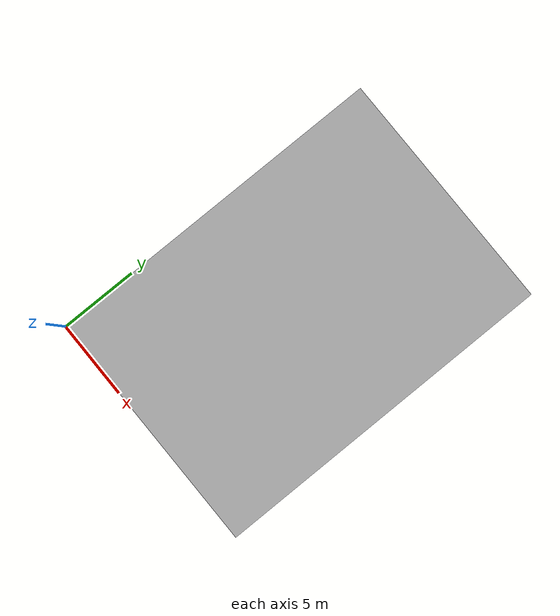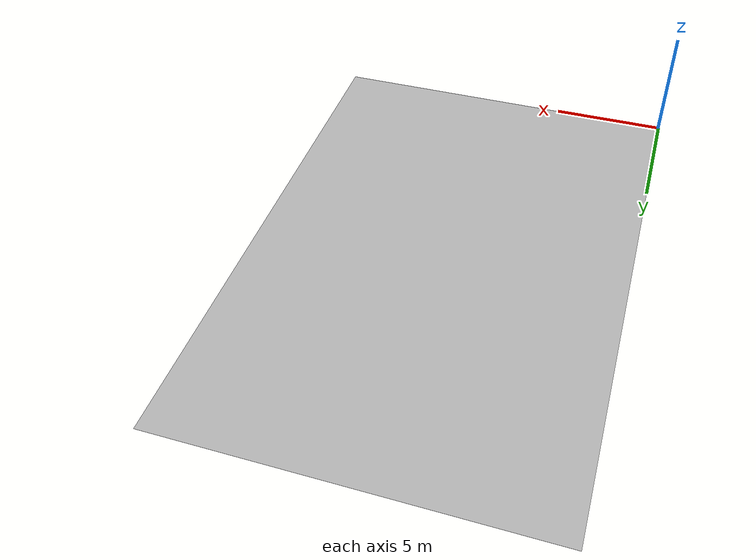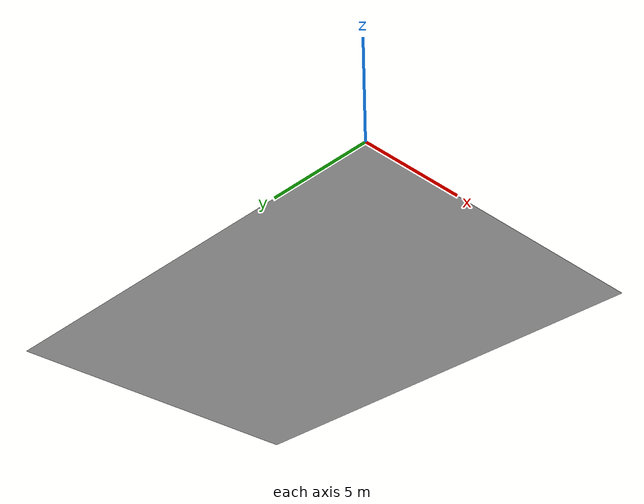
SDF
<?xml version='1.0'?>
<sdf version='1.7'>
  <model name='line'>
    <link name='link_0'>
      <inertial>
        <mass>1</mass>
        <inertia>
          <ixx>0.166667</ixx>
          <ixy>0</ixy>
          <ixz>0</ixz>
          <iyy>0.166667</iyy>
          <iyz>0</iyz>
          <izz>0.166667</izz>
        </inertia>
        <pose>0 0 0 0 -0 0</pose>
      </inertial>
      <pose>0 0 0 0 -0 0</pose>
      <gravity>1</gravity>
      <visual name='visual'>
        <pose>0 0 0 0 -0 0</pose>
        <material>
          <lighting>1</lighting>
        </material>
        <geometry>
          <mesh>
            <uri>model://line/meshes/line.dae</uri>
          </mesh>
        </geometry>
        <transparency>0</transparency>
        <cast_shadows>1</cast_shadows>
      </visual>
      <collision name='collision'>
        <laser_retro>0</laser_retro>
        <max_contacts>10</max_contacts>
        <pose>0 0 0 0 -0 0</pose>
        <geometry>
          <mesh>
            <uri>model://line/meshes/line.dae</uri>
          </mesh>
        </geometry>
      </collision>
    </link>
    <static>1</static>
    <allow_auto_disable>1</allow_auto_disable>
  </model>
</sdf>
